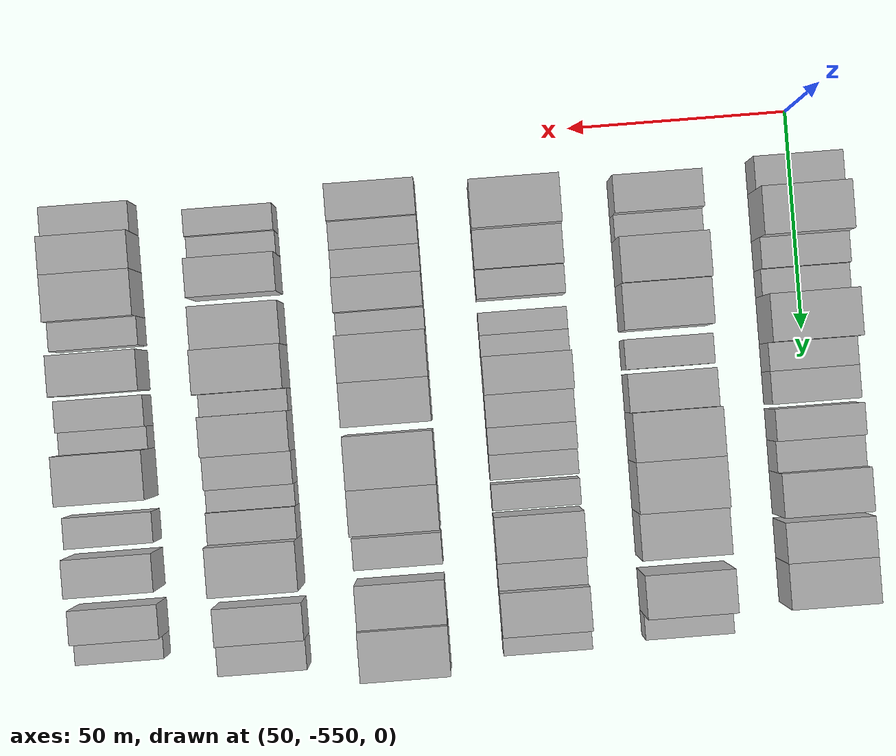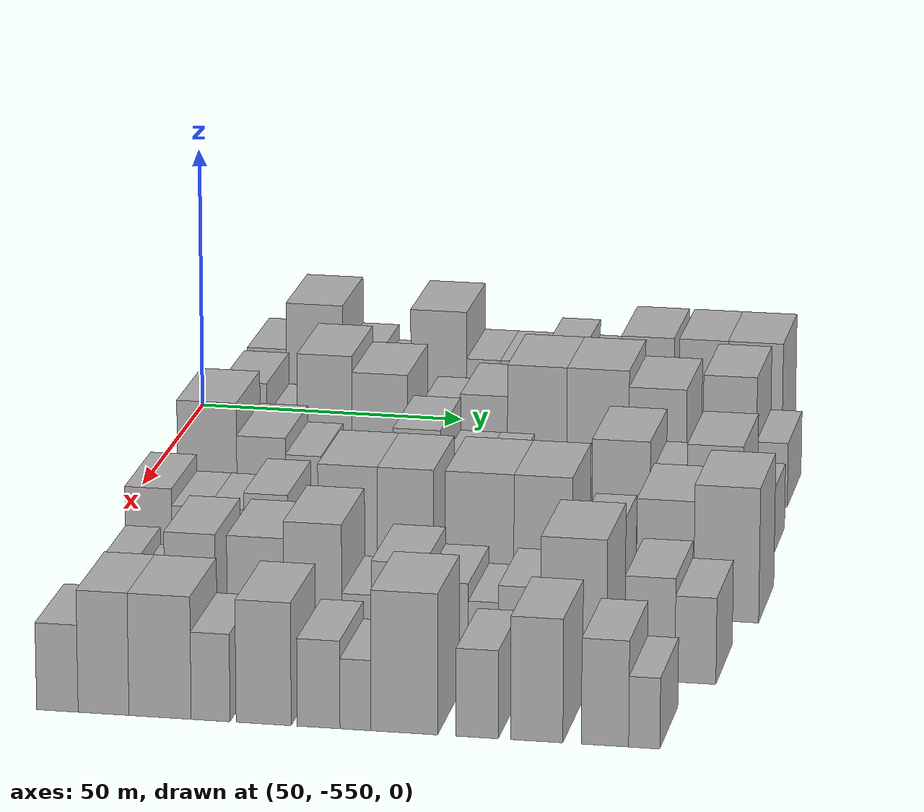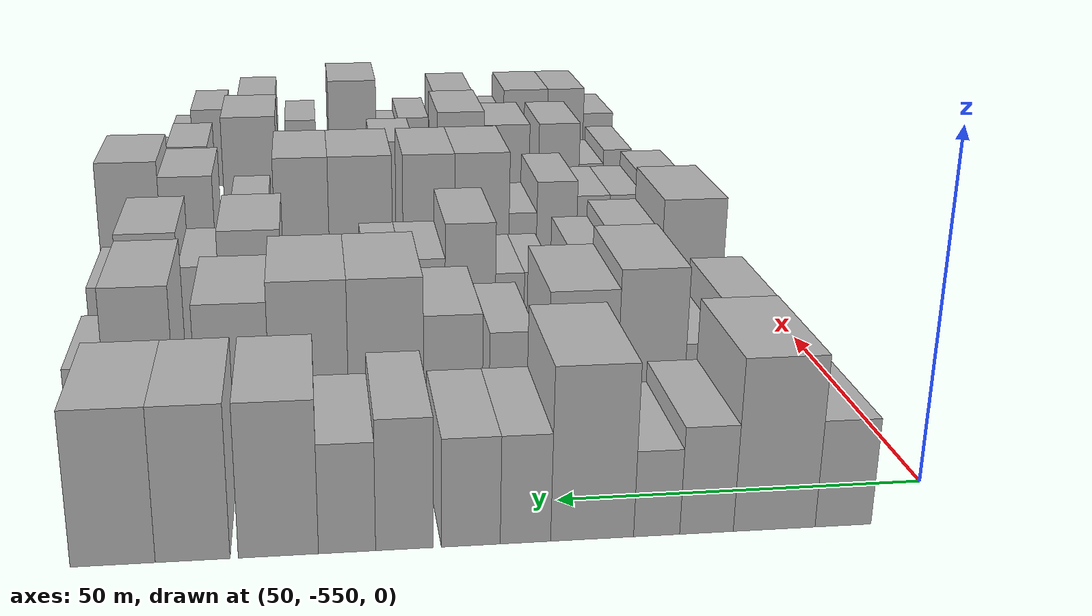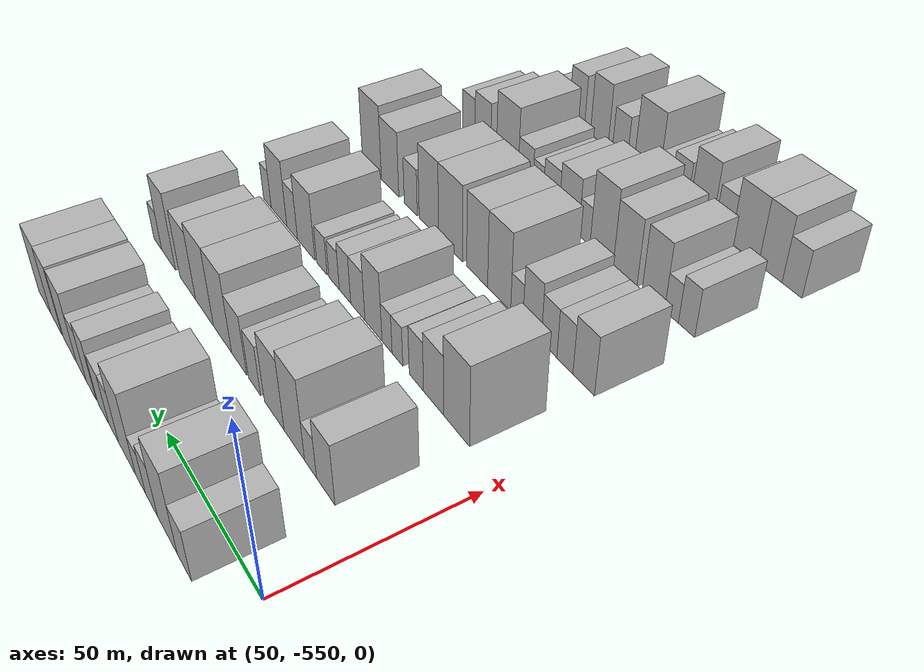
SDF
<sdf version="1.6">
 <world name="default">
  <model name="building_1">
   <static>1</static>
   <pose>50.0000 -535.2907 0 0.000000 0.000000 0.000000</pose>
   <link name="link">
    <pose>0 0 7.50 0 0 0</pose>
    <collision name="collision"><geometry><box><size>20.0000 7.4186 15.0000</size></box></geometry></collision>
    <visual name="visual">
     <cast_shadows>0</cast_shadows>
     <geometry><box><size>20.0000 7.4186 15.0000</size></box></geometry>
     <material>
      <script>
       <uri>model://HANNAS_wall/materials/scripts</uri>
       <uri>model://HANNAS_wall/materials/textures</uri>
       <name>vrc/HANNAS_wall</name>
      </script>
     </material>
    </visual>
   </link>
  </model>
  <model name="building_2">
   <static>1</static>
   <pose>50.0000 -526.2123 0 0.000000 0.000000 0.000000</pose>
   <link name="link">
    <pose>0 0 12.00 0 0 0</pose>
    <collision name="collision"><geometry><box><size>20.0000 10.7382 24.0000</size></box></geometry></collision>
    <visual name="visual">
     <cast_shadows>0</cast_shadows>
     <geometry><box><size>20.0000 10.7382 24.0000</size></box></geometry>
     <material>
      <script>
       <uri>model://HANNAS_wall/materials/scripts</uri>
       <uri>model://HANNAS_wall/materials/textures</uri>
       <name>vrc/HANNAS_wall</name>
      </script>
     </material>
    </visual>
   </link>
  </model>
  <model name="building_3">
   <static>1</static>
   <pose>50.0000 -517.3542 0 0.000000 0.000000 0.000000</pose>
   <link name="link">
    <pose>0 0 7.50 0 0 0</pose>
    <collision name="collision"><geometry><box><size>20.0000 6.9780 15.0000</size></box></geometry></collision>
    <visual name="visual">
     <cast_shadows>0</cast_shadows>
     <geometry><box><size>20.0000 6.9780 15.0000</size></box></geometry>
     <material>
      <script>
       <uri>model://HANNAS_wall/materials/scripts</uri>
       <uri>model://HANNAS_wall/materials/textures</uri>
       <name>vrc/HANNAS_wall</name>
      </script>
     </material>
    </visual>
   </link>
  </model>
  <model name="building_4">
   <static>1</static>
   <pose>50.0000 -510.8868 0 0.000000 0.000000 0.000000</pose>
   <link name="link">
    <pose>0 0 6.00 0 0 0</pose>
    <collision name="collision"><geometry><box><size>20.0000 5.9567 12.0000</size></box></geometry></collision>
    <visual name="visual">
     <cast_shadows>0</cast_shadows>
     <geometry><box><size>20.0000 5.9567 12.0000</size></box></geometry>
     <material>
      <script>
       <uri>model://HANNAS_wall/materials/scripts</uri>
       <uri>model://HANNAS_wall/materials/textures</uri>
       <name>vrc/HANNAS_wall</name>
      </script>
     </material>
    </visual>
   </link>
  </model>
  <model name="building_5">
   <static>1</static>
   <pose>50.0000 -502.5958 0 0.000000 0.000000 0.000000</pose>
   <link name="link">
    <pose>0 0 12.00 0 0 0</pose>
    <collision name="collision"><geometry><box><size>20.0000 10.6253 24.0000</size></box></geometry></collision>
    <visual name="visual">
     <cast_shadows>0</cast_shadows>
     <geometry><box><size>20.0000 10.6253 24.0000</size></box></geometry>
     <material>
      <script>
       <uri>model://HANNAS_wall/materials/scripts</uri>
       <uri>model://HANNAS_wall/materials/textures</uri>
       <name>vrc/HANNAS_wall</name>
      </script>
     </material>
    </visual>
   </link>
  </model>
  <model name="building_6">
   <static>1</static>
   <pose>50.0000 -494.0893 0 0.000000 0.000000 0.000000</pose>
   <link name="link">
    <pose>0 0 7.50 0 0 0</pose>
    <collision name="collision"><geometry><box><size>20.0000 6.3879 15.0000</size></box></geometry></collision>
    <visual name="visual">
     <cast_shadows>0</cast_shadows>
     <geometry><box><size>20.0000 6.3879 15.0000</size></box></geometry>
     <material>
      <script>
       <uri>model://HANNAS_wall/materials/scripts</uri>
       <uri>model://HANNAS_wall/materials/textures</uri>
       <name>vrc/HANNAS_wall</name>
      </script>
     </material>
    </visual>
   </link>
  </model>
  <model name="building_7">
   <static>1</static>
   <pose>50.0000 -487.1926 0 0.000000 0.000000 0.000000</pose>
   <link name="link">
    <pose>0 0 7.50 0 0 0</pose>
    <collision name="collision"><geometry><box><size>20.0000 7.4053 15.0000</size></box></geometry></collision>
    <visual name="visual">
     <cast_shadows>0</cast_shadows>
     <geometry><box><size>20.0000 7.4053 15.0000</size></box></geometry>
     <material>
      <script>
       <uri>model://HANNAS_wall/materials/scripts</uri>
       <uri>model://HANNAS_wall/materials/textures</uri>
       <name>vrc/HANNAS_wall</name>
      </script>
     </material>
    </visual>
   </link>
  </model>
  <model name="building_8">
   <static>1</static>
   <pose>50.0000 -478.8828 0 0.000000 0.000000 0.000000</pose>
   <link name="link">
    <pose>0 0 9.00 0 0 0</pose>
    <collision name="collision"><geometry><box><size>20.0000 7.2143 18.0000</size></box></geometry></collision>
    <visual name="visual">
     <cast_shadows>0</cast_shadows>
     <geometry><box><size>20.0000 7.2143 18.0000</size></box></geometry>
     <material>
      <script>
       <uri>model://HANNAS_wall/materials/scripts</uri>
       <uri>model://HANNAS_wall/materials/textures</uri>
       <name>vrc/HANNAS_wall</name>
      </script>
     </material>
    </visual>
   </link>
  </model>
  <model name="building_9">
   <static>1</static>
   <pose>50.0000 -471.7403 0 0.000000 0.000000 0.000000</pose>
   <link name="link">
    <pose>0 0 7.50 0 0 0</pose>
    <collision name="collision"><geometry><box><size>20.0000 7.0706 15.0000</size></box></geometry></collision>
    <visual name="visual">
     <cast_shadows>0</cast_shadows>
     <geometry><box><size>20.0000 7.0706 15.0000</size></box></geometry>
     <material>
      <script>
       <uri>model://HANNAS_wall/materials/scripts</uri>
       <uri>model://HANNAS_wall/materials/textures</uri>
       <name>vrc/HANNAS_wall</name>
      </script>
     </material>
    </visual>
   </link>
  </model>
  <model name="building_10">
   <static>1</static>
   <pose>50.0000 -463.2833 0 0.000000 0.000000 0.000000</pose>
   <link name="link">
    <pose>0 0 10.50 0 0 0</pose>
    <collision name="collision"><geometry><box><size>20.0000 9.8434 21.0000</size></box></geometry></collision>
    <visual name="visual">
     <cast_shadows>0</cast_shadows>
     <geometry><box><size>20.0000 9.8434 21.0000</size></box></geometry>
     <material>
      <script>
       <uri>model://HANNAS_wall/materials/scripts</uri>
       <uri>model://HANNAS_wall/materials/textures</uri>
       <name>vrc/HANNAS_wall</name>
      </script>
     </material>
    </visual>
   </link>
  </model>
  <model name="building_11">
   <static>1</static>
   <pose>50.0000 -452.8289 0 0.000000 0.000000 0.000000</pose>
   <link name="link">
    <pose>0 0 10.50 0 0 0</pose>
    <collision name="collision"><geometry><box><size>20.0000 9.0655 21.0000</size></box></geometry></collision>
    <visual name="visual">
     <cast_shadows>0</cast_shadows>
     <geometry><box><size>20.0000 9.0655 21.0000</size></box></geometry>
     <material>
      <script>
       <uri>model://HANNAS_wall/materials/scripts</uri>
       <uri>model://HANNAS_wall/materials/textures</uri>
       <name>vrc/HANNAS_wall</name>
      </script>
     </material>
    </visual>
   </link>
  </model>
  <model name="building_12">
   <static>1</static>
   <pose>50.0000 -443.1844 0 0.000000 0.000000 0.000000</pose>
   <link name="link">
    <pose>0 0 10.50 0 0 0</pose>
    <collision name="collision"><geometry><box><size>20.0000 10.2234 21.0000</size></box></geometry></collision>
    <visual name="visual">
     <cast_shadows>0</cast_shadows>
     <geometry><box><size>20.0000 10.2234 21.0000</size></box></geometry>
     <material>
      <script>
       <uri>model://HANNAS_wall/materials/scripts</uri>
       <uri>model://HANNAS_wall/materials/textures</uri>
       <name>vrc/HANNAS_wall</name>
      </script>
     </material>
    </visual>
   </link>
  </model>
  <model name="building_132">
   <static>1</static>
   <pose>82.0000 -532.7802 0 0.000000 0.000000 0.000000</pose>
   <link name="link">
    <pose>0 0 9.00 0 0 0</pose>
    <collision name="collision"><geometry><box><size>20.0000 8.4395 18.0000</size></box></geometry></collision>
    <visual name="visual">
     <cast_shadows>0</cast_shadows>
     <geometry><box><size>20.0000 8.4395 18.0000</size></box></geometry>
     <material>
      <script>
       <uri>model://HANNAS_wall/materials/scripts</uri>
       <uri>model://HANNAS_wall/materials/textures</uri>
       <name>vrc/HANNAS_wall</name>
      </script>
     </material>
    </visual>
   </link>
  </model>
  <model name="building_133">
   <static>1</static>
   <pose>82.0000 -525.7269 0 0.000000 0.000000 0.000000</pose>
   <link name="link">
    <pose>0 0 6.00 0 0 0</pose>
    <collision name="collision"><geometry><box><size>20.0000 5.6672 12.0000</size></box></geometry></collision>
    <visual name="visual">
     <cast_shadows>0</cast_shadows>
     <geometry><box><size>20.0000 5.6672 12.0000</size></box></geometry>
     <material>
      <script>
       <uri>model://HANNAS_wall/materials/scripts</uri>
       <uri>model://HANNAS_wall/materials/textures</uri>
       <name>vrc/HANNAS_wall</name>
      </script>
     </material>
    </visual>
   </link>
  </model>
  <model name="building_134">
   <static>1</static>
   <pose>82.0000 -517.8267 0 0.000000 0.000000 0.000000</pose>
   <link name="link">
    <pose>0 0 12.00 0 0 0</pose>
    <collision name="collision"><geometry><box><size>20.0000 10.1333 24.0000</size></box></geometry></collision>
    <visual name="visual">
     <cast_shadows>0</cast_shadows>
     <geometry><box><size>20.0000 10.1333 24.0000</size></box></geometry>
     <material>
      <script>
       <uri>model://HANNAS_wall/materials/scripts</uri>
       <uri>model://HANNAS_wall/materials/textures</uri>
       <name>vrc/HANNAS_wall</name>
      </script>
     </material>
    </visual>
   </link>
  </model>
  <model name="building_135">
   <static>1</static>
   <pose>82.0000 -507.6017 0 0.000000 0.000000 0.000000</pose>
   <link name="link">
    <pose>0 0 10.50 0 0 0</pose>
    <collision name="collision"><geometry><box><size>20.0000 10.3166 21.0000</size></box></geometry></collision>
    <visual name="visual">
     <cast_shadows>0</cast_shadows>
     <geometry><box><size>20.0000 10.3166 21.0000</size></box></geometry>
     <material>
      <script>
       <uri>model://HANNAS_wall/materials/scripts</uri>
       <uri>model://HANNAS_wall/materials/textures</uri>
       <name>vrc/HANNAS_wall</name>
      </script>
     </material>
    </visual>
   </link>
  </model>
  <model name="building_136">
   <static>1</static>
   <pose>82.0000 -497.0884 0 0.000000 0.000000 0.000000</pose>
   <link name="link">
    <pose>0 0 7.50 0 0 0</pose>
    <collision name="collision"><geometry><box><size>20.0000 6.7101 15.0000</size></box></geometry></collision>
    <visual name="visual">
     <cast_shadows>0</cast_shadows>
     <geometry><box><size>20.0000 6.7101 15.0000</size></box></geometry>
     <material>
      <script>
       <uri>model://HANNAS_wall/materials/scripts</uri>
       <uri>model://HANNAS_wall/materials/textures</uri>
       <name>vrc/HANNAS_wall</name>
      </script>
     </material>
    </visual>
   </link>
  </model>
  <model name="building_137">
   <static>1</static>
   <pose>82.0000 -488.4206 0 0.000000 0.000000 0.000000</pose>
   <link name="link">
    <pose>0 0 9.00 0 0 0</pose>
    <collision name="collision"><geometry><box><size>20.0000 8.6253 18.0000</size></box></geometry></collision>
    <visual name="visual">
     <cast_shadows>0</cast_shadows>
     <geometry><box><size>20.0000 8.6253 18.0000</size></box></geometry>
     <material>
      <script>
       <uri>model://HANNAS_wall/materials/scripts</uri>
       <uri>model://HANNAS_wall/materials/textures</uri>
       <name>vrc/HANNAS_wall</name>
      </script>
     </material>
    </visual>
   </link>
  </model>
  <model name="building_138">
   <static>1</static>
   <pose>82.0000 -478.6534 0 0.000000 0.000000 0.000000</pose>
   <link name="link">
    <pose>0 0 12.00 0 0 0</pose>
    <collision name="collision"><geometry><box><size>20.0000 10.9092 24.0000</size></box></geometry></collision>
    <visual name="visual">
     <cast_shadows>0</cast_shadows>
     <geometry><box><size>20.0000 10.9092 24.0000</size></box></geometry>
     <material>
      <script>
       <uri>model://HANNAS_wall/materials/scripts</uri>
       <uri>model://HANNAS_wall/materials/textures</uri>
       <name>vrc/HANNAS_wall</name>
      </script>
     </material>
    </visual>
   </link>
  </model>
  <model name="building_139">
   <static>1</static>
   <pose>82.0000 -467.5382 0 0.000000 0.000000 0.000000</pose>
   <link name="link">
    <pose>0 0 12.00 0 0 0</pose>
    <collision name="collision"><geometry><box><size>20.0000 11.3211 24.0000</size></box></geometry></collision>
    <visual name="visual">
     <cast_shadows>0</cast_shadows>
     <geometry><box><size>20.0000 11.3211 24.0000</size></box></geometry>
     <material>
      <script>
       <uri>model://HANNAS_wall/materials/scripts</uri>
       <uri>model://HANNAS_wall/materials/textures</uri>
       <name>vrc/HANNAS_wall</name>
      </script>
     </material>
    </visual>
   </link>
  </model>
  <model name="building_140">
   <static>1</static>
   <pose>82.0000 -456.6390 0 0.000000 0.000000 0.000000</pose>
   <link name="link">
    <pose>0 0 10.50 0 0 0</pose>
    <collision name="collision"><geometry><box><size>20.0000 10.4774 21.0000</size></box></geometry></collision>
    <visual name="visual">
     <cast_shadows>0</cast_shadows>
     <geometry><box><size>20.0000 10.4774 21.0000</size></box></geometry>
     <material>
      <script>
       <uri>model://HANNAS_wall/materials/scripts</uri>
       <uri>model://HANNAS_wall/materials/textures</uri>
       <name>vrc/HANNAS_wall</name>
      </script>
     </material>
    </visual>
   </link>
  </model>
  <model name="building_141">
   <static>1</static>
   <pose>82.0000 -443.5543 0 0.000000 0.000000 0.000000</pose>
   <link name="link">
    <pose>0 0 12.00 0 0 0</pose>
    <collision name="collision"><geometry><box><size>20.0000 9.6920 24.0000</size></box></geometry></collision>
    <visual name="visual">
     <cast_shadows>0</cast_shadows>
     <geometry><box><size>20.0000 9.6920 24.0000</size></box></geometry>
     <material>
      <script>
       <uri>model://HANNAS_wall/materials/scripts</uri>
       <uri>model://HANNAS_wall/materials/textures</uri>
       <name>vrc/HANNAS_wall</name>
      </script>
     </material>
    </visual>
   </link>
  </model>
  <model name="building_142">
   <static>1</static>
   <pose>82.0000 -435.8448 0 0.000000 0.000000 0.000000</pose>
   <link name="link">
    <pose>0 0 6.00 0 0 0</pose>
    <collision name="collision"><geometry><box><size>20.0000 5.7269 12.0000</size></box></geometry></collision>
    <visual name="visual">
     <cast_shadows>0</cast_shadows>
     <geometry><box><size>20.0000 5.7269 12.0000</size></box></geometry>
     <material>
      <script>
       <uri>model://HANNAS_wall/materials/scripts</uri>
       <uri>model://HANNAS_wall/materials/textures</uri>
       <name>vrc/HANNAS_wall</name>
      </script>
     </material>
    </visual>
   </link>
  </model>
  <model name="building_258">
   <static>1</static>
   <pose>114.0000 -532.6172 0 0.000000 0.000000 0.000000</pose>
   <link name="link">
    <pose>0 0 12.00 0 0 0</pose>
    <collision name="collision"><geometry><box><size>20.0000 10.7657 24.0000</size></box></geometry></collision>
    <visual name="visual">
     <cast_shadows>0</cast_shadows>
     <geometry><box><size>20.0000 10.7657 24.0000</size></box></geometry>
     <material>
      <script>
       <uri>model://HANNAS_wall/materials/scripts</uri>
       <uri>model://HANNAS_wall/materials/textures</uri>
       <name>vrc/HANNAS_wall</name>
      </script>
     </material>
    </visual>
   </link>
  </model>
  <model name="building_259">
   <static>1</static>
   <pose>114.0000 -522.8400 0 0.000000 0.000000 0.000000</pose>
   <link name="link">
    <pose>0 0 9.00 0 0 0</pose>
    <collision name="collision"><geometry><box><size>20.0000 8.7887 18.0000</size></box></geometry></collision>
    <visual name="visual">
     <cast_shadows>0</cast_shadows>
     <geometry><box><size>20.0000 8.7887 18.0000</size></box></geometry>
     <material>
      <script>
       <uri>model://HANNAS_wall/materials/scripts</uri>
       <uri>model://HANNAS_wall/materials/textures</uri>
       <name>vrc/HANNAS_wall</name>
      </script>
     </material>
    </visual>
   </link>
  </model>
  <model name="building_260">
   <static>1</static>
   <pose>114.0000 -515.2184 0 0.000000 0.000000 0.000000</pose>
   <link name="link">
    <pose>0 0 7.50 0 0 0</pose>
    <collision name="collision"><geometry><box><size>20.0000 6.4546 15.0000</size></box></geometry></collision>
    <visual name="visual">
     <cast_shadows>0</cast_shadows>
     <geometry><box><size>20.0000 6.4546 15.0000</size></box></geometry>
     <material>
      <script>
       <uri>model://HANNAS_wall/materials/scripts</uri>
       <uri>model://HANNAS_wall/materials/textures</uri>
       <name>vrc/HANNAS_wall</name>
      </script>
     </material>
    </visual>
   </link>
  </model>
  <model name="building_261">
   <static>1</static>
   <pose>114.0000 -506.4618 0 0.000000 0.000000 0.000000</pose>
   <link name="link">
    <pose>0 0 6.00 0 0 0</pose>
    <collision name="collision"><geometry><box><size>20.0000 5.0585 12.0000</size></box></geometry></collision>
    <visual name="visual">
     <cast_shadows>0</cast_shadows>
     <geometry><box><size>20.0000 5.0585 12.0000</size></box></geometry>
     <material>
      <script>
       <uri>model://HANNAS_wall/materials/scripts</uri>
       <uri>model://HANNAS_wall/materials/textures</uri>
       <name>vrc/HANNAS_wall</name>
      </script>
     </material>
    </visual>
   </link>
  </model>
  <model name="building_262">
   <static>1</static>
   <pose>114.0000 -501.4879 0 0.000000 0.000000 0.000000</pose>
   <link name="link">
    <pose>0 0 6.00 0 0 0</pose>
    <collision name="collision"><geometry><box><size>20.0000 4.8893 12.0000</size></box></geometry></collision>
    <visual name="visual">
     <cast_shadows>0</cast_shadows>
     <geometry><box><size>20.0000 4.8893 12.0000</size></box></geometry>
     <material>
      <script>
       <uri>model://HANNAS_wall/materials/scripts</uri>
       <uri>model://HANNAS_wall/materials/textures</uri>
       <name>vrc/HANNAS_wall</name>
      </script>
     </material>
    </visual>
   </link>
  </model>
  <model name="building_263">
   <static>1</static>
   <pose>114.0000 -494.7967 0 0.000000 0.000000 0.000000</pose>
   <link name="link">
    <pose>0 0 10.50 0 0 0</pose>
    <collision name="collision"><geometry><box><size>20.0000 8.4929 21.0000</size></box></geometry></collision>
    <visual name="visual">
     <cast_shadows>0</cast_shadows>
     <geometry><box><size>20.0000 8.4929 21.0000</size></box></geometry>
     <material>
      <script>
       <uri>model://HANNAS_wall/materials/scripts</uri>
       <uri>model://HANNAS_wall/materials/textures</uri>
       <name>vrc/HANNAS_wall</name>
      </script>
     </material>
    </visual>
   </link>
  </model>
  <model name="building_264">
   <static>1</static>
   <pose>114.0000 -486.8690 0 0.000000 0.000000 0.000000</pose>
   <link name="link">
    <pose>0 0 7.50 0 0 0</pose>
    <collision name="collision"><geometry><box><size>20.0000 7.3625 15.0000</size></box></geometry></collision>
    <visual name="visual">
     <cast_shadows>0</cast_shadows>
     <geometry><box><size>20.0000 7.3625 15.0000</size></box></geometry>
     <material>
      <script>
       <uri>model://HANNAS_wall/materials/scripts</uri>
       <uri>model://HANNAS_wall/materials/textures</uri>
       <name>vrc/HANNAS_wall</name>
      </script>
     </material>
    </visual>
   </link>
  </model>
  <model name="building_265">
   <static>1</static>
   <pose>114.0000 -480.1386 0 0.000000 0.000000 0.000000</pose>
   <link name="link">
    <pose>0 0 7.50 0 0 0</pose>
    <collision name="collision"><geometry><box><size>20.0000 6.0984 15.0000</size></box></geometry></collision>
    <visual name="visual">
     <cast_shadows>0</cast_shadows>
     <geometry><box><size>20.0000 6.0984 15.0000</size></box></geometry>
     <material>
      <script>
       <uri>model://HANNAS_wall/materials/scripts</uri>
       <uri>model://HANNAS_wall/materials/textures</uri>
       <name>vrc/HANNAS_wall</name>
      </script>
     </material>
    </visual>
   </link>
  </model>
  <model name="building_266">
   <static>1</static>
   <pose>114.0000 -474.2439 0 0.000000 0.000000 0.000000</pose>
   <link name="link">
    <pose>0 0 6.00 0 0 0</pose>
    <collision name="collision"><geometry><box><size>20.0000 5.6909 12.0000</size></box></geometry></collision>
    <visual name="visual">
     <cast_shadows>0</cast_shadows>
     <geometry><box><size>20.0000 5.6909 12.0000</size></box></geometry>
     <material>
      <script>
       <uri>model://HANNAS_wall/materials/scripts</uri>
       <uri>model://HANNAS_wall/materials/textures</uri>
       <name>vrc/HANNAS_wall</name>
      </script>
     </material>
    </visual>
   </link>
  </model>
  <model name="building_267">
   <static>1</static>
   <pose>114.0000 -467.4512 0 0.000000 0.000000 0.000000</pose>
   <link name="link">
    <pose>0 0 6.00 0 0 0</pose>
    <collision name="collision"><geometry><box><size>20.0000 5.8947 12.0000</size></box></geometry></collision>
    <visual name="visual">
     <cast_shadows>0</cast_shadows>
     <geometry><box><size>20.0000 5.8947 12.0000</size></box></geometry>
     <material>
      <script>
       <uri>model://HANNAS_wall/materials/scripts</uri>
       <uri>model://HANNAS_wall/materials/textures</uri>
       <name>vrc/HANNAS_wall</name>
      </script>
     </material>
    </visual>
   </link>
  </model>
  <model name="building_268">
   <static>1</static>
   <pose>114.0000 -458.3702 0 0.000000 0.000000 0.000000</pose>
   <link name="link">
    <pose>0 0 10.50 0 0 0</pose>
    <collision name="collision"><geometry><box><size>20.0000 10.2672 21.0000</size></box></geometry></collision>
    <visual name="visual">
     <cast_shadows>0</cast_shadows>
     <geometry><box><size>20.0000 10.2672 21.0000</size></box></geometry>
     <material>
      <script>
       <uri>model://HANNAS_wall/materials/scripts</uri>
       <uri>model://HANNAS_wall/materials/textures</uri>
       <name>vrc/HANNAS_wall</name>
      </script>
     </material>
    </visual>
   </link>
  </model>
  <model name="building_269">
   <static>1</static>
   <pose>114.0000 -449.9880 0 0.000000 0.000000 0.000000</pose>
   <link name="link">
    <pose>0 0 7.50 0 0 0</pose>
    <collision name="collision"><geometry><box><size>20.0000 6.4973 15.0000</size></box></geometry></collision>
    <visual name="visual">
     <cast_shadows>0</cast_shadows>
     <geometry><box><size>20.0000 6.4973 15.0000</size></box></geometry>
     <material>
      <script>
       <uri>model://HANNAS_wall/materials/scripts</uri>
       <uri>model://HANNAS_wall/materials/textures</uri>
       <name>vrc/HANNAS_wall</name>
      </script>
     </material>
    </visual>
   </link>
  </model>
  <model name="building_270">
   <static>1</static>
   <pose>114.0000 -441.8040 0 0.000000 0.000000 0.000000</pose>
   <link name="link">
    <pose>0 0 10.50 0 0 0</pose>
    <collision name="collision"><geometry><box><size>20.0000 9.8707 21.0000</size></box></geometry></collision>
    <visual name="visual">
     <cast_shadows>0</cast_shadows>
     <geometry><box><size>20.0000 9.8707 21.0000</size></box></geometry>
     <material>
      <script>
       <uri>model://HANNAS_wall/materials/scripts</uri>
       <uri>model://HANNAS_wall/materials/textures</uri>
       <name>vrc/HANNAS_wall</name>
      </script>
     </material>
    </visual>
   </link>
  </model>
  <model name="building_271">
   <static>1</static>
   <pose>114.0000 -434.3947 0 0.000000 0.000000 0.000000</pose>
   <link name="link">
    <pose>0 0 6.00 0 0 0</pose>
    <collision name="collision"><geometry><box><size>20.0000 4.9477 12.0000</size></box></geometry></collision>
    <visual name="visual">
     <cast_shadows>0</cast_shadows>
     <geometry><box><size>20.0000 4.9477 12.0000</size></box></geometry>
     <material>
      <script>
       <uri>model://HANNAS_wall/materials/scripts</uri>
       <uri>model://HANNAS_wall/materials/textures</uri>
       <name>vrc/HANNAS_wall</name>
      </script>
     </material>
    </visual>
   </link>
  </model>
  <model name="building_383">
   <static>1</static>
   <pose>146.0000 -535.8835 0 0.000000 0.000000 0.000000</pose>
   <link name="link">
    <pose>0 0 9.00 0 0 0</pose>
    <collision name="collision"><geometry><box><size>20.0000 8.2331 18.0000</size></box></geometry></collision>
    <visual name="visual">
     <cast_shadows>0</cast_shadows>
     <geometry><box><size>20.0000 8.2331 18.0000</size></box></geometry>
     <material>
      <script>
       <uri>model://HANNAS_wall/materials/scripts</uri>
       <uri>model://HANNAS_wall/materials/textures</uri>
       <name>vrc/HANNAS_wall</name>
      </script>
     </material>
    </visual>
   </link>
  </model>
  <model name="building_384">
   <static>1</static>
   <pose>146.0000 -528.6056 0 0.000000 0.000000 0.000000</pose>
   <link name="link">
    <pose>0 0 7.50 0 0 0</pose>
    <collision name="collision"><geometry><box><size>20.0000 6.3226 15.0000</size></box></geometry></collision>
    <visual name="visual">
     <cast_shadows>0</cast_shadows>
     <geometry><box><size>20.0000 6.3226 15.0000</size></box></geometry>
     <material>
      <script>
       <uri>model://HANNAS_wall/materials/scripts</uri>
       <uri>model://HANNAS_wall/materials/textures</uri>
       <name>vrc/HANNAS_wall</name>
      </script>
     </material>
    </visual>
   </link>
  </model>
  <model name="building_385">
   <static>1</static>
   <pose>146.0000 -522.2742 0 0.000000 0.000000 0.000000</pose>
   <link name="link">
    <pose>0 0 7.50 0 0 0</pose>
    <collision name="collision"><geometry><box><size>20.0000 6.3401 15.0000</size></box></geometry></collision>
    <visual name="visual">
     <cast_shadows>0</cast_shadows>
     <geometry><box><size>20.0000 6.3401 15.0000</size></box></geometry>
     <material>
      <script>
       <uri>model://HANNAS_wall/materials/scripts</uri>
       <uri>model://HANNAS_wall/materials/textures</uri>
       <name>vrc/HANNAS_wall</name>
      </script>
     </material>
    </visual>
   </link>
  </model>
  <model name="building_386">
   <static>1</static>
   <pose>146.0000 -515.2441 0 0.000000 0.000000 0.000000</pose>
   <link name="link">
    <pose>0 0 9.00 0 0 0</pose>
    <collision name="collision"><geometry><box><size>20.0000 7.7201 18.0000</size></box></geometry></collision>
    <visual name="visual">
     <cast_shadows>0</cast_shadows>
     <geometry><box><size>20.0000 7.7201 18.0000</size></box></geometry>
     <material>
      <script>
       <uri>model://HANNAS_wall/materials/scripts</uri>
       <uri>model://HANNAS_wall/materials/textures</uri>
       <name>vrc/HANNAS_wall</name>
      </script>
     </material>
    </visual>
   </link>
  </model>
  <model name="building_387">
   <static>1</static>
   <pose>146.0000 -508.7264 0 0.000000 0.000000 0.000000</pose>
   <link name="link">
    <pose>0 0 6.00 0 0 0</pose>
    <collision name="collision"><geometry><box><size>20.0000 5.3153 12.0000</size></box></geometry></collision>
    <visual name="visual">
     <cast_shadows>0</cast_shadows>
     <geometry><box><size>20.0000 5.3153 12.0000</size></box></geometry>
     <material>
      <script>
       <uri>model://HANNAS_wall/materials/scripts</uri>
       <uri>model://HANNAS_wall/materials/textures</uri>
       <name>vrc/HANNAS_wall</name>
      </script>
     </material>
    </visual>
   </link>
  </model>
  <model name="building_388">
   <static>1</static>
   <pose>146.0000 -500.8722 0 0.000000 0.000000 0.000000</pose>
   <link name="link">
    <pose>0 0 12.00 0 0 0</pose>
    <collision name="collision"><geometry><box><size>20.0000 10.3932 24.0000</size></box></geometry></collision>
    <visual name="visual">
     <cast_shadows>0</cast_shadows>
     <geometry><box><size>20.0000 10.3932 24.0000</size></box></geometry>
     <material>
      <script>
       <uri>model://HANNAS_wall/materials/scripts</uri>
       <uri>model://HANNAS_wall/materials/textures</uri>
       <name>vrc/HANNAS_wall</name>
      </script>
     </material>
    </visual>
   </link>
  </model>
  <model name="building_389">
   <static>1</static>
   <pose>146.0000 -490.7672 0 0.000000 0.000000 0.000000</pose>
   <link name="link">
    <pose>0 0 12.00 0 0 0</pose>
    <collision name="collision"><geometry><box><size>20.0000 9.8169 24.0000</size></box></geometry></collision>
    <visual name="visual">
     <cast_shadows>0</cast_shadows>
     <geometry><box><size>20.0000 9.8169 24.0000</size></box></geometry>
     <material>
      <script>
       <uri>model://HANNAS_wall/materials/scripts</uri>
       <uri>model://HANNAS_wall/materials/textures</uri>
       <name>vrc/HANNAS_wall</name>
      </script>
     </material>
    </visual>
   </link>
  </model>
  <model name="building_390">
   <static>1</static>
   <pose>146.0000 -477.9072 0 0.000000 0.000000 0.000000</pose>
   <link name="link">
    <pose>0 0 12.00 0 0 0</pose>
    <collision name="collision"><geometry><box><size>20.0000 11.9031 24.0000</size></box></geometry></collision>
    <visual name="visual">
     <cast_shadows>0</cast_shadows>
     <geometry><box><size>20.0000 11.9031 24.0000</size></box></geometry>
     <material>
      <script>
       <uri>model://HANNAS_wall/materials/scripts</uri>
       <uri>model://HANNAS_wall/materials/textures</uri>
       <name>vrc/HANNAS_wall</name>
      </script>
     </material>
    </visual>
   </link>
  </model>
  <model name="building_391">
   <static>1</static>
   <pose>146.0000 -466.9076 0 0.000000 0.000000 0.000000</pose>
   <link name="link">
    <pose>0 0 12.00 0 0 0</pose>
    <collision name="collision"><geometry><box><size>20.0000 10.0962 24.0000</size></box></geometry></collision>
    <visual name="visual">
     <cast_shadows>0</cast_shadows>
     <geometry><box><size>20.0000 10.0962 24.0000</size></box></geometry>
     <material>
      <script>
       <uri>model://HANNAS_wall/materials/scripts</uri>
       <uri>model://HANNAS_wall/materials/textures</uri>
       <name>vrc/HANNAS_wall</name>
      </script>
     </material>
    </visual>
   </link>
  </model>
  <model name="building_392">
   <static>1</static>
   <pose>146.0000 -457.3187 0 0.000000 0.000000 0.000000</pose>
   <link name="link">
    <pose>0 0 7.50 0 0 0</pose>
    <collision name="collision"><geometry><box><size>20.0000 7.0815 15.0000</size></box></geometry></collision>
    <visual name="visual">
     <cast_shadows>0</cast_shadows>
     <geometry><box><size>20.0000 7.0815 15.0000</size></box></geometry>
     <material>
      <script>
       <uri>model://HANNAS_wall/materials/scripts</uri>
       <uri>model://HANNAS_wall/materials/textures</uri>
       <name>vrc/HANNAS_wall</name>
      </script>
     </material>
    </visual>
   </link>
  </model>
  <model name="building_393">
   <static>1</static>
   <pose>146.0000 -445.8339 0 0.000000 0.000000 0.000000</pose>
   <link name="link">
    <pose>0 0 10.50 0 0 0</pose>
    <collision name="collision"><geometry><box><size>20.0000 9.8881 21.0000</size></box></geometry></collision>
    <visual name="visual">
     <cast_shadows>0</cast_shadows>
     <geometry><box><size>20.0000 9.8881 21.0000</size></box></geometry>
     <material>
      <script>
       <uri>model://HANNAS_wall/materials/scripts</uri>
       <uri>model://HANNAS_wall/materials/textures</uri>
       <name>vrc/HANNAS_wall</name>
      </script>
     </material>
    </visual>
   </link>
  </model>
  <model name="building_394">
   <static>1</static>
   <pose>146.0000 -435.2964 0 0.000000 0.000000 0.000000</pose>
   <link name="link">
    <pose>0 0 12.00 0 0 0</pose>
    <collision name="collision"><geometry><box><size>20.0000 11.1870 24.0000</size></box></geometry></collision>
    <visual name="visual">
     <cast_shadows>0</cast_shadows>
     <geometry><box><size>20.0000 11.1870 24.0000</size></box></geometry>
     <material>
      <script>
       <uri>model://HANNAS_wall/materials/scripts</uri>
       <uri>model://HANNAS_wall/materials/textures</uri>
       <name>vrc/HANNAS_wall</name>
      </script>
     </material>
    </visual>
   </link>
  </model>
  <model name="building_494">
   <static>1</static>
   <pose>178.0000 -533.9971 0 0.000000 0.000000 0.000000</pose>
   <link name="link">
    <pose>0 0 7.50 0 0 0</pose>
    <collision name="collision"><geometry><box><size>20.0000 6.0057 15.0000</size></box></geometry></collision>
    <visual name="visual">
     <cast_shadows>0</cast_shadows>
     <geometry><box><size>20.0000 6.0057 15.0000</size></box></geometry>
     <material>
      <script>
       <uri>model://HANNAS_wall/materials/scripts</uri>
       <uri>model://HANNAS_wall/materials/textures</uri>
       <name>vrc/HANNAS_wall</name>
      </script>
     </material>
    </visual>
   </link>
  </model>
  <model name="building_495">
   <static>1</static>
   <pose>178.0000 -528.3903 0 0.000000 0.000000 0.000000</pose>
   <link name="link">
    <pose>0 0 6.00 0 0 0</pose>
    <collision name="collision"><geometry><box><size>20.0000 5.2080 12.0000</size></box></geometry></collision>
    <visual name="visual">
     <cast_shadows>0</cast_shadows>
     <geometry><box><size>20.0000 5.2080 12.0000</size></box></geometry>
     <material>
      <script>
       <uri>model://HANNAS_wall/materials/scripts</uri>
       <uri>model://HANNAS_wall/materials/textures</uri>
       <name>vrc/HANNAS_wall</name>
      </script>
     </material>
    </visual>
   </link>
  </model>
  <model name="building_496">
   <static>1</static>
   <pose>178.0000 -521.4249 0 0.000000 0.000000 0.000000</pose>
   <link name="link">
    <pose>0 0 10.50 0 0 0</pose>
    <collision name="collision"><geometry><box><size>20.0000 8.7227 21.0000</size></box></geometry></collision>
    <visual name="visual">
     <cast_shadows>0</cast_shadows>
     <geometry><box><size>20.0000 8.7227 21.0000</size></box></geometry>
     <material>
      <script>
       <uri>model://HANNAS_wall/materials/scripts</uri>
       <uri>model://HANNAS_wall/materials/textures</uri>
       <name>vrc/HANNAS_wall</name>
      </script>
     </material>
    </visual>
   </link>
  </model>
  <model name="building_497">
   <static>1</static>
   <pose>178.0000 -510.2320 0 0.000000 0.000000 0.000000</pose>
   <link name="link">
    <pose>0 0 10.50 0 0 0</pose>
    <collision name="collision"><geometry><box><size>20.0000 9.6632 21.0000</size></box></geometry></collision>
    <visual name="visual">
     <cast_shadows>0</cast_shadows>
     <geometry><box><size>20.0000 9.6632 21.0000</size></box></geometry>
     <material>
      <script>
       <uri>model://HANNAS_wall/materials/scripts</uri>
       <uri>model://HANNAS_wall/materials/textures</uri>
       <name>vrc/HANNAS_wall</name>
      </script>
     </material>
    </visual>
   </link>
  </model>
  <model name="building_498">
   <static>1</static>
   <pose>178.0000 -500.4731 0 0.000000 0.000000 0.000000</pose>
   <link name="link">
    <pose>0 0 12.00 0 0 0</pose>
    <collision name="collision"><geometry><box><size>20.0000 9.8545 24.0000</size></box></geometry></collision>
    <visual name="visual">
     <cast_shadows>0</cast_shadows>
     <geometry><box><size>20.0000 9.8545 24.0000</size></box></geometry>
     <material>
      <script>
       <uri>model://HANNAS_wall/materials/scripts</uri>
       <uri>model://HANNAS_wall/materials/textures</uri>
       <name>vrc/HANNAS_wall</name>
      </script>
     </material>
    </visual>
   </link>
  </model>
  <model name="building_499">
   <static>1</static>
   <pose>178.0000 -493.0454 0 0.000000 0.000000 0.000000</pose>
   <link name="link">
    <pose>0 0 6.00 0 0 0</pose>
    <collision name="collision"><geometry><box><size>20.0000 5.0008 12.0000</size></box></geometry></collision>
    <visual name="visual">
     <cast_shadows>0</cast_shadows>
     <geometry><box><size>20.0000 5.0008 12.0000</size></box></geometry>
     <material>
      <script>
       <uri>model://HANNAS_wall/materials/scripts</uri>
       <uri>model://HANNAS_wall/materials/textures</uri>
       <name>vrc/HANNAS_wall</name>
      </script>
     </material>
    </visual>
   </link>
  </model>
  <model name="building_500">
   <static>1</static>
   <pose>178.0000 -486.0547 0 0.000000 0.000000 0.000000</pose>
   <link name="link">
    <pose>0 0 9.00 0 0 0</pose>
    <collision name="collision"><geometry><box><size>20.0000 8.9806 18.0000</size></box></geometry></collision>
    <visual name="visual">
     <cast_shadows>0</cast_shadows>
     <geometry><box><size>20.0000 8.9806 18.0000</size></box></geometry>
     <material>
      <script>
       <uri>model://HANNAS_wall/materials/scripts</uri>
       <uri>model://HANNAS_wall/materials/textures</uri>
       <name>vrc/HANNAS_wall</name>
      </script>
     </material>
    </visual>
   </link>
  </model>
  <model name="building_501">
   <static>1</static>
   <pose>178.0000 -477.8527 0 0.000000 0.000000 0.000000</pose>
   <link name="link">
    <pose>0 0 7.50 0 0 0</pose>
    <collision name="collision"><geometry><box><size>20.0000 7.4234 15.0000</size></box></geometry></collision>
    <visual name="visual">
     <cast_shadows>0</cast_shadows>
     <geometry><box><size>20.0000 7.4234 15.0000</size></box></geometry>
     <material>
      <script>
       <uri>model://HANNAS_wall/materials/scripts</uri>
       <uri>model://HANNAS_wall/materials/textures</uri>
       <name>vrc/HANNAS_wall</name>
      </script>
     </material>
    </visual>
   </link>
  </model>
  <model name="building_502">
   <static>1</static>
   <pose>178.0000 -471.6140 0 0.000000 0.000000 0.000000</pose>
   <link name="link">
    <pose>0 0 6.00 0 0 0</pose>
    <collision name="collision"><geometry><box><size>20.0000 5.0538 12.0000</size></box></geometry></collision>
    <visual name="visual">
     <cast_shadows>0</cast_shadows>
     <geometry><box><size>20.0000 5.0538 12.0000</size></box></geometry>
     <material>
      <script>
       <uri>model://HANNAS_wall/materials/scripts</uri>
       <uri>model://HANNAS_wall/materials/textures</uri>
       <name>vrc/HANNAS_wall</name>
      </script>
     </material>
    </visual>
   </link>
  </model>
  <model name="building_503">
   <static>1</static>
   <pose>178.0000 -465.5127 0 0.000000 0.000000 0.000000</pose>
   <link name="link">
    <pose>0 0 7.50 0 0 0</pose>
    <collision name="collision"><geometry><box><size>20.0000 7.1488 15.0000</size></box></geometry></collision>
    <visual name="visual">
     <cast_shadows>0</cast_shadows>
     <geometry><box><size>20.0000 7.1488 15.0000</size></box></geometry>
     <material>
      <script>
       <uri>model://HANNAS_wall/materials/scripts</uri>
       <uri>model://HANNAS_wall/materials/textures</uri>
       <name>vrc/HANNAS_wall</name>
      </script>
     </material>
    </visual>
   </link>
  </model>
  <model name="building_504">
   <static>1</static>
   <pose>178.0000 -456.3916 0 0.000000 0.000000 0.000000</pose>
   <link name="link">
    <pose>0 0 12.00 0 0 0</pose>
    <collision name="collision"><geometry><box><size>20.0000 11.0934 24.0000</size></box></geometry></collision>
    <visual name="visual">
     <cast_shadows>0</cast_shadows>
     <geometry><box><size>20.0000 11.0934 24.0000</size></box></geometry>
     <material>
      <script>
       <uri>model://HANNAS_wall/materials/scripts</uri>
       <uri>model://HANNAS_wall/materials/textures</uri>
       <name>vrc/HANNAS_wall</name>
      </script>
     </material>
    </visual>
   </link>
  </model>
  <model name="building_505">
   <static>1</static>
   <pose>178.0000 -443.6422 0 0.000000 0.000000 0.000000</pose>
   <link name="link">
    <pose>0 0 9.00 0 0 0</pose>
    <collision name="collision"><geometry><box><size>20.0000 8.4054 18.0000</size></box></geometry></collision>
    <visual name="visual">
     <cast_shadows>0</cast_shadows>
     <geometry><box><size>20.0000 8.4054 18.0000</size></box></geometry>
     <material>
      <script>
       <uri>model://HANNAS_wall/materials/scripts</uri>
       <uri>model://HANNAS_wall/materials/textures</uri>
       <name>vrc/HANNAS_wall</name>
      </script>
     </material>
    </visual>
   </link>
  </model>
  <model name="building_506">
   <static>1</static>
   <pose>178.0000 -436.0119 0 0.000000 0.000000 0.000000</pose>
   <link name="link">
    <pose>0 0 7.50 0 0 0</pose>
    <collision name="collision"><geometry><box><size>20.0000 6.8553 15.0000</size></box></geometry></collision>
    <visual name="visual">
     <cast_shadows>0</cast_shadows>
     <geometry><box><size>20.0000 6.8553 15.0000</size></box></geometry>
     <material>
      <script>
       <uri>model://HANNAS_wall/materials/scripts</uri>
       <uri>model://HANNAS_wall/materials/textures</uri>
       <name>vrc/HANNAS_wall</name>
      </script>
     </material>
    </visual>
   </link>
  </model>
  <model name="building_625">
   <static>1</static>
   <pose>210.0000 -536.5233 0 0.000000 0.000000 0.000000</pose>
   <link name="link">
    <pose>0 0 7.50 0 0 0</pose>
    <collision name="collision"><geometry><box><size>20.0000 6.9535 15.0000</size></box></geometry></collision>
    <visual name="visual">
     <cast_shadows>0</cast_shadows>
     <geometry><box><size>20.0000 6.9535 15.0000</size></box></geometry>
     <material>
      <script>
       <uri>model://HANNAS_wall/materials/scripts</uri>
       <uri>model://HANNAS_wall/materials/textures</uri>
       <name>vrc/HANNAS_wall</name>
      </script>
     </material>
    </visual>
   </link>
  </model>
  <model name="building_626">
   <static>1</static>
   <pose>210.0000 -528.7958 0 0.000000 0.000000 0.000000</pose>
   <link name="link">
    <pose>0 0 10.50 0 0 0</pose>
    <collision name="collision"><geometry><box><size>20.0000 8.5014 21.0000</size></box></geometry></collision>
    <visual name="visual">
     <cast_shadows>0</cast_shadows>
     <geometry><box><size>20.0000 8.5014 21.0000</size></box></geometry>
     <material>
      <script>
       <uri>model://HANNAS_wall/materials/scripts</uri>
       <uri>model://HANNAS_wall/materials/textures</uri>
       <name>vrc/HANNAS_wall</name>
      </script>
     </material>
    </visual>
   </link>
  </model>
  <model name="building_627">
   <static>1</static>
   <pose>210.0000 -519.3511 0 0.000000 0.000000 0.000000</pose>
   <link name="link">
    <pose>0 0 10.50 0 0 0</pose>
    <collision name="collision"><geometry><box><size>20.0000 10.3881 21.0000</size></box></geometry></collision>
    <visual name="visual">
     <cast_shadows>0</cast_shadows>
     <geometry><box><size>20.0000 10.3881 21.0000</size></box></geometry>
     <material>
      <script>
       <uri>model://HANNAS_wall/materials/scripts</uri>
       <uri>model://HANNAS_wall/materials/textures</uri>
       <name>vrc/HANNAS_wall</name>
      </script>
     </material>
    </visual>
   </link>
  </model>
  <model name="building_628">
   <static>1</static>
   <pose>210.0000 -510.9298 0 0.000000 0.000000 0.000000</pose>
   <link name="link">
    <pose>0 0 7.50 0 0 0</pose>
    <collision name="collision"><geometry><box><size>20.0000 6.4544 15.0000</size></box></geometry></collision>
    <visual name="visual">
     <cast_shadows>0</cast_shadows>
     <geometry><box><size>20.0000 6.4544 15.0000</size></box></geometry>
     <material>
      <script>
       <uri>model://HANNAS_wall/materials/scripts</uri>
       <uri>model://HANNAS_wall/materials/textures</uri>
       <name>vrc/HANNAS_wall</name>
      </script>
     </material>
    </visual>
   </link>
  </model>
  <model name="building_629">
   <static>1</static>
   <pose>210.0000 -502.1328 0 0.000000 0.000000 0.000000</pose>
   <link name="link">
    <pose>0 0 10.50 0 0 0</pose>
    <collision name="collision"><geometry><box><size>20.0000 9.1396 21.0000</size></box></geometry></collision>
    <visual name="visual">
     <cast_shadows>0</cast_shadows>
     <geometry><box><size>20.0000 9.1396 21.0000</size></box></geometry>
     <material>
      <script>
       <uri>model://HANNAS_wall/materials/scripts</uri>
       <uri>model://HANNAS_wall/materials/textures</uri>
       <name>vrc/HANNAS_wall</name>
      </script>
     </material>
    </visual>
   </link>
  </model>
  <model name="building_630">
   <static>1</static>
   <pose>210.0000 -493.0343 0 0.000000 0.000000 0.000000</pose>
   <link name="link">
    <pose>0 0 7.50 0 0 0</pose>
    <collision name="collision"><geometry><box><size>20.0000 7.0575 15.0000</size></box></geometry></collision>
    <visual name="visual">
     <cast_shadows>0</cast_shadows>
     <geometry><box><size>20.0000 7.0575 15.0000</size></box></geometry>
     <material>
      <script>
       <uri>model://HANNAS_wall/materials/scripts</uri>
       <uri>model://HANNAS_wall/materials/textures</uri>
       <name>vrc/HANNAS_wall</name>
      </script>
     </material>
    </visual>
   </link>
  </model>
  <model name="building_631">
   <static>1</static>
   <pose>210.0000 -486.9500 0 0.000000 0.000000 0.000000</pose>
   <link name="link">
    <pose>0 0 6.00 0 0 0</pose>
    <collision name="collision"><geometry><box><size>20.0000 5.1111 12.0000</size></box></geometry></collision>
    <visual name="visual">
     <cast_shadows>0</cast_shadows>
     <geometry><box><size>20.0000 5.1111 12.0000</size></box></geometry>
     <material>
      <script>
       <uri>model://HANNAS_wall/materials/scripts</uri>
       <uri>model://HANNAS_wall/materials/textures</uri>
       <name>vrc/HANNAS_wall</name>
      </script>
     </material>
    </visual>
   </link>
  </model>
  <model name="building_632">
   <static>1</static>
   <pose>210.0000 -478.9129 0 0.000000 0.000000 0.000000</pose>
   <link name="link">
    <pose>0 0 12.00 0 0 0</pose>
    <collision name="collision"><geometry><box><size>20.0000 10.9632 24.0000</size></box></geometry></collision>
    <visual name="visual">
     <cast_shadows>0</cast_shadows>
     <geometry><box><size>20.0000 10.9632 24.0000</size></box></geometry>
     <material>
      <script>
       <uri>model://HANNAS_wall/materials/scripts</uri>
       <uri>model://HANNAS_wall/materials/textures</uri>
       <name>vrc/HANNAS_wall</name>
      </script>
     </material>
    </visual>
   </link>
  </model>
  <model name="building_633">
   <static>1</static>
   <pose>210.0000 -466.9572 0 0.000000 0.000000 0.000000</pose>
   <link name="link">
    <pose>0 0 7.50 0 0 0</pose>
    <collision name="collision"><geometry><box><size>20.0000 6.9481 15.0000</size></box></geometry></collision>
    <visual name="visual">
     <cast_shadows>0</cast_shadows>
     <geometry><box><size>20.0000 6.9481 15.0000</size></box></geometry>
     <material>
      <script>
       <uri>model://HANNAS_wall/materials/scripts</uri>
       <uri>model://HANNAS_wall/materials/textures</uri>
       <name>vrc/HANNAS_wall</name>
      </script>
     </material>
    </visual>
   </link>
  </model>
  <model name="building_634">
   <static>1</static>
   <pose>210.0000 -457.2175 0 0.000000 0.000000 0.000000</pose>
   <link name="link">
    <pose>0 0 10.50 0 0 0</pose>
    <collision name="collision"><geometry><box><size>20.0000 8.5313 21.0000</size></box></geometry></collision>
    <visual name="visual">
     <cast_shadows>0</cast_shadows>
     <geometry><box><size>20.0000 8.5313 21.0000</size></box></geometry>
     <material>
      <script>
       <uri>model://HANNAS_wall/materials/scripts</uri>
       <uri>model://HANNAS_wall/materials/textures</uri>
       <name>vrc/HANNAS_wall</name>
      </script>
     </material>
    </visual>
   </link>
  </model>
  <model name="building_635">
   <static>1</static>
   <pose>210.0000 -446.1049 0 0.000000 0.000000 0.000000</pose>
   <link name="link">
    <pose>0 0 9.00 0 0 0</pose>
    <collision name="collision"><geometry><box><size>20.0000 7.6938 18.0000</size></box></geometry></collision>
    <visual name="visual">
     <cast_shadows>0</cast_shadows>
     <geometry><box><size>20.0000 7.6938 18.0000</size></box></geometry>
     <material>
      <script>
       <uri>model://HANNAS_wall/materials/scripts</uri>
       <uri>model://HANNAS_wall/materials/textures</uri>
       <name>vrc/HANNAS_wall</name>
      </script>
     </material>
    </visual>
   </link>
  </model>
  <model name="building_636">
   <static>1</static>
   <pose>210.0000 -439.7236 0 0.000000 0.000000 0.000000</pose>
   <link name="link">
    <pose>0 0 6.00 0 0 0</pose>
    <collision name="collision"><geometry><box><size>20.0000 5.0689 12.0000</size></box></geometry></collision>
    <visual name="visual">
     <cast_shadows>0</cast_shadows>
     <geometry><box><size>20.0000 5.0689 12.0000</size></box></geometry>
     <material>
      <script>
       <uri>model://HANNAS_wall/materials/scripts</uri>
       <uri>model://HANNAS_wall/materials/textures</uri>
       <name>vrc/HANNAS_wall</name>
      </script>
     </material>
    </visual>
   </link>
  </model>
 </world>
</sdf>
